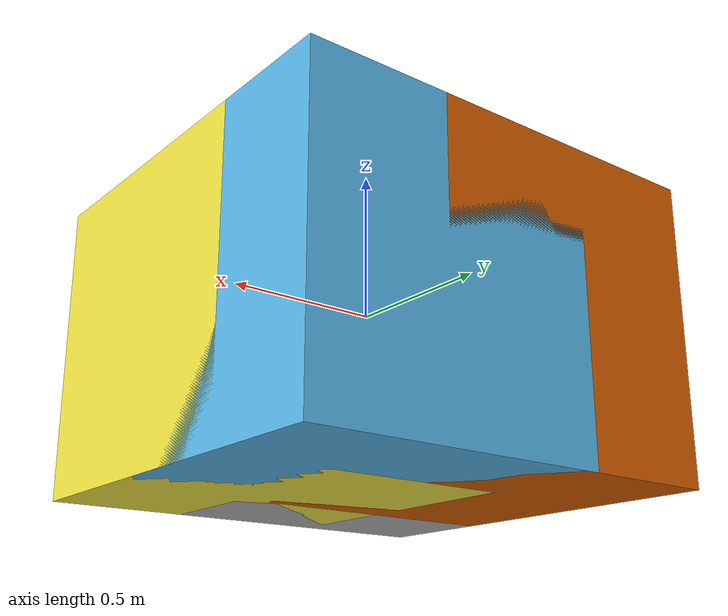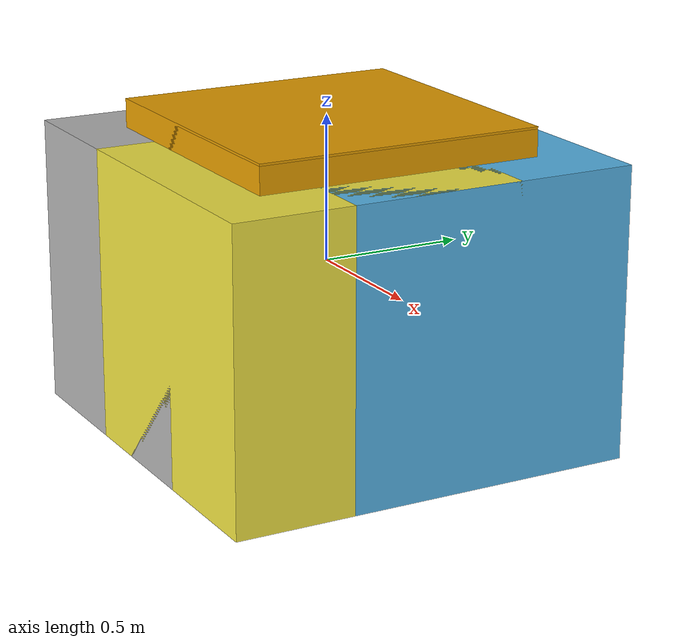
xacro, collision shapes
<?xml version="1.0" ?>
<!-- |    This document was autogenerated by xacro from src/ranger_description/urdf/ranger_mini.xacro | -->
<!-- |    EDITING THIS FILE BY HAND IS NOT RECOMMENDED                                 | -->
<robot name="ranger_description">
  <!-- Base link -->
  <link name="base_link">
    <visual>
      <origin rpy="1.57 0 3.14 " xyz="0 0 0"/>
      <geometry>
        <mesh filename="package://ranger_description/meshes/ranger_base.dae"/>
      </geometry>
    </visual>
    <collision>
      <origin rpy="0 0 0" xyz="0 0 0.008"/>
      <geometry>
        <box size="1 1 1"/>
      </geometry>
    </collision>
    <collision>
      <origin rpy="0 0 0" xyz="0 0 0"/>
      <geometry>
        <box size="1 1 1"/>
      </geometry>
    </collision>
  </link>
  <link name="fl_steering_wheel_link">
    <visual>
      <origin rpy="1.57 0 3.14 " xyz="0 0 0"/>
      <geometry>
        <cylinder length="0.001" radius="0.001"/>
      </geometry>
    </visual>
    <collision>
      <origin rpy="0 0 0" xyz="0 0 0.008"/>
      <geometry>
        <box size="1 1 1"/>
      </geometry>
    </collision>
    <collision>
      <origin rpy="0 0 0" xyz="0 0 0"/>
      <geometry>
        <cylinder length="0.001" radius="0.001"/>
      </geometry>
    </collision>
  </link>
  <joint name="fl_steering_wheel" type="revolute">
    <origin rpy="0 0 0" xyz="0.23 0.206 -0.1"/>
    <parent link="base_link"/>
    <child link="fl_steering_wheel_link"/>
    <axis rpy="0 0 0" xyz="0 0 1"/>
    <limit effort="5" lower="-2.1" upper="2.1" velocity="6.28"/>
  </joint>
  <link name="fl_wheel_link">
    <inertial>
      <mass value="8"/>
      <origin xyz="0 0 0"/>
      <inertia ixx="0.1171" ixy="0" ixz="0" iyy="0.1361" iyz="0" izz="0.1171"/>
    </inertial>
    <visual>
      <origin rpy="1.57 0 0" xyz="0.23 -0.2 0.1"/>
      <geometry>
        <mesh filename="package://ranger_description/meshes/fr.dae"/>
      </geometry>
    </visual>
    <collision>
      <origin rpy="0 0 0" xyz="0 0 0"/>
      <geometry>
        <cylinder length="0.1" radius="0.1"/>
      </geometry>
      <contact>
        <ode>
          <min_depth>0.001</min_depth>
        </ode>
      </contact>
    </collision>
  </link>
  <joint name="fl_wheel" type="continuous">
    <origin rpy="0 0 0" xyz="0.0 0.0 0.0"/>
    <parent link="fl_steering_wheel_link"/>
    <child link="fl_wheel_link"/>
    <axis rpy="0 0 0" xyz="0 0 1"/>
  </joint>
  <link name="fr_steering_wheel_link">
    <visual>
      <origin rpy="1.57 0 3.14 " xyz="0 0 0"/>
      <geometry>
        <cylinder length="0.001" radius="0.001"/>
      </geometry>
    </visual>
    <collision>
      <origin rpy="0 0 0" xyz="0 0 0.008"/>
      <geometry>
        <box size="1 1 1"/>
      </geometry>
    </collision>
    <collision>
      <origin rpy="0 0 0" xyz="0 0 0"/>
      <geometry>
        <cylinder length="0.001" radius="0.001"/>
      </geometry>
    </collision>
  </link>
  <joint name="fr_steering_wheel" type="revolute">
    <origin rpy="0 0 0" xyz="0.23 -0.206 -0.1"/>
    <parent link="base_link"/>
    <child link="fr_steering_wheel_link"/>
    <axis rpy="0 0 0" xyz="0 0 1"/>
    <limit effort="5" lower="-2.1" upper="2.1" velocity="6.28"/>
  </joint>
  <link name="fr_wheel_link">
    <inertial>
      <mass value="8"/>
      <origin xyz="0 0 0"/>
      <inertia ixx="0.1171" ixy="0" ixz="0" iyy="0.1361" iyz="0" izz="0.1171"/>
    </inertial>
    <visual>
      <origin rpy="1.57 0 0" xyz="0.23 0.2 0.1"/>
      <geometry>
        <mesh filename="package://ranger_description/meshes/fl.dae"/>
      </geometry>
    </visual>
    <collision>
      <origin rpy="0 0 0" xyz="0 0 0"/>
      <geometry>
        <cylinder length="0.1" radius="0.1"/>
      </geometry>
      <contact>
        <ode>
          <min_depth>0.001</min_depth>
        </ode>
      </contact>
    </collision>
  </link>
  <joint name="fr_wheel" type="continuous">
    <origin rpy="0 0 0" xyz="0.0 0.0 0.0"/>
    <parent link="fr_steering_wheel_link"/>
    <child link="fr_wheel_link"/>
    <axis rpy="0 0 0" xyz="0 0 1"/>
  </joint>
  <link name="rl_steering_wheel_link">
    <visual>
      <origin rpy="1.57 0 3.14 " xyz="0 0 0"/>
      <geometry>
        <cylinder length="0.001" radius="0.001"/>
      </geometry>
    </visual>
    <collision>
      <origin rpy="0 0 0" xyz="0 0 0.008"/>
      <geometry>
        <box size="1 1 1"/>
      </geometry>
    </collision>
    <collision>
      <origin rpy="0 0 0" xyz="0 0 0"/>
      <geometry>
        <cylinder length="0.001" radius="0.001"/>
      </geometry>
    </collision>
  </link>
  <joint name="rl_steering_wheel" type="revolute">
    <origin rpy="0 0 0" xyz="-0.23 0.206 -0.1"/>
    <parent link="base_link"/>
    <child link="rl_steering_wheel_link"/>
    <axis rpy="0 0 0" xyz="0 0 1"/>
    <limit effort="5" lower="-2.1" upper="2.1" velocity="6.28"/>
  </joint>
  <link name="rl_wheel_link">
    <inertial>
      <mass value="8"/>
      <origin xyz="0 0 0"/>
      <inertia ixx="0.1171" ixy="0" ixz="0" iyy="0.1361" iyz="0" izz="0.1171"/>
    </inertial>
    <visual>
      <origin rpy="1.57 0 0" xyz="0.23 -0.2 0.1"/>
      <geometry>
        <mesh filename="package://ranger_description/meshes/fr.dae"/>
      </geometry>
    </visual>
    <collision>
      <origin rpy="0 0 0" xyz="0 0 0"/>
      <geometry>
        <cylinder length="0.1" radius="0.1"/>
      </geometry>
      <contact>
        <ode>
          <min_depth>0.001</min_depth>
        </ode>
      </contact>
    </collision>
  </link>
  <joint name="rl_wheel" type="continuous">
    <origin rpy="0 0 0" xyz="0.0 0.0 0.0 "/>
    <parent link="rl_steering_wheel_link"/>
    <child link="rl_wheel_link"/>
    <axis rpy="0 0 0" xyz="0 0 1"/>
  </joint>
  <link name="rr_steering_wheel_link">
    <visual>
      <origin rpy="1.57 0 3.14 " xyz="0 0 0"/>
      <geometry>
        <cylinder length="0.001" radius="0.001"/>
      </geometry>
    </visual>
    <collision>
      <origin rpy="0 0 0" xyz="0 0 0.008"/>
      <geometry>
        <box size="1 1 1"/>
      </geometry>
    </collision>
    <collision>
      <origin rpy="0 0 0" xyz="0 0 0"/>
      <geometry>
        <cylinder length="0.001" radius="0.001"/>
      </geometry>
    </collision>
  </link>
  <joint name="rr_steering_wheel" type="revolute">
    <origin rpy="0 0 0" xyz="-0.23 -0.206 -0.1"/>
    <parent link="base_link"/>
    <child link="rr_steering_wheel_link"/>
    <axis rpy="0 0 0" xyz="0 0 1"/>
    <limit effort="5" lower="-2.1" upper="2.1" velocity="6.28"/>
  </joint>
  <link name="rr_wheel_link">
    <inertial>
      <mass value="8"/>
      <origin xyz="0 0 0"/>
      <inertia ixx="0.1171" ixy="0" ixz="0" iyy="0.1361" iyz="0" izz="0.1171"/>
    </inertial>
    <visual>
      <origin rpy="1.57 0 0" xyz="0.23 0.2 0.1"/>
      <geometry>
        <mesh filename="package://ranger_description/meshes/fl.dae"/>
      </geometry>
    </visual>
    <collision>
      <origin rpy="0 0 0" xyz="0 0 0"/>
      <geometry>
        <cylinder length="0.1" radius="0.1"/>
      </geometry>
      <contact>
        <ode>
          <min_depth>0.001</min_depth>
        </ode>
      </contact>
    </collision>
  </link>
  <joint name="rr_wheel" type="continuous">
    <origin rpy="0 0 0" xyz="0.0 0.0 0.0 "/>
    <parent link="rr_steering_wheel_link"/>
    <child link="rr_wheel_link"/>
    <axis rpy="0 0 0" xyz="0 0 1"/>
  </joint>
  <!-- 定义长方体link -->
  <link name="box_link">
    <visual>
      <origin rpy="0 0 0" xyz="0 0 0.15"/>
      <geometry>
        <box size="0.5 0.3 0.25"/>
      </geometry>
      <material name="gray">
        <color rgba="0.7 0.7 0.7 1.0"/>
      </material>
    </visual>
    <collision>
      <origin rpy="0 0 0" xyz="0 0 0.15"/>
      <geometry>
        <box size="0.5 0.3 0.25"/>
      </geometry>
    </collision>
    <inertial>
      <mass value="2.0"/>
      <!-- 假设质量2kg -->
      <origin xyz="0 0 0.15"/>
      <inertia ixx="0.1" ixy="0" ixz="0" iyy="0.1" iyz="0" izz="0.1"/>
    </inertial>
  </link>
  <!-- 将长方体固定到base_link -->
  <joint name="box_joint" type="fixed">
    <origin rpy="0 0 0" xyz="0.03 0 0"/>
    <!-- 放在base_link上方 -->
    <parent link="base_link"/>
    <child link="box_link"/>
  </joint>
  <material name="aluminum">
    <color rgba="0.5 0.5 0.5 1"/>
  </material>
  <material name="plastic">
    <color rgba="0.1 0.1 0.1 1"/>
  </material>
  <!-- camera body, with origin at bottom screw mount -->
  <joint name="camera_joint" type="fixed">
    <origin rpy="0 0 0" xyz="0.25 0 0.15"/>
    <parent link="box_link"/>
    <child link="camera_bottom_screw_frame"/>
  </joint>
  <link name="camera_bottom_screw_frame"/>
  <joint name="camera_link_joint" type="fixed">
    <origin rpy="0 0 0" xyz="0.010600000000000002 0.0175 0.0125"/>
    <parent link="camera_bottom_screw_frame"/>
    <child link="camera_link"/>
  </joint>
  <link name="camera_link">
    <visual>
      <!-- the mesh origin is at front plate in between the two infrared camera axes -->
      <origin rpy="1.5707963267948966 0 1.5707963267948966" xyz="0.0043 -0.0175 0"/>
      <geometry>
        <mesh filename="file:///home/syswonder/zhengwu/robonix/robonix/capability/ranger_description/install/realsense2_description/share/realsense2_description/meshes/d435.dae"/>
      </geometry>
    </visual>
    <collision>
      <origin rpy="0 0 0" xyz="0 -0.0175 0"/>
      <geometry>
        <box size="0.02505 0.09 0.025"/>
      </geometry>
    </collision>
    <inertial>
      <!-- The following are not reliable values, and should not be used for modeling -->
      <mass value="0.072"/>
      <origin xyz="0 0 0"/>
      <inertia ixx="0.003881243" ixy="0.0" ixz="0.0" iyy="0.000498940" iyz="0.0" izz="0.003879257"/>
    </inertial>
  </link>
  <!-- Mid360激光雷达链接 -->
  <link name="livox_frame">
    <visual>
      <geometry>
        <box size="0.08 0.08 0.05"/>
        <!-- 用蓝色盒子表示激光雷达 -->
      </geometry>
      <material name="blue">
        <color rgba="0.0 0.0 1.0 1.0"/>
        <!-- 蓝色 -->
      </material>
    </visual>
    <collision>
      <geometry>
        <box size="0.08 0.08 0.05"/>
      </geometry>
    </collision>
    <inertial>
      <mass value="0.1"/>
      <inertia ixx="0.0001" ixy="0.0" ixz="0.0" iyy="0.0001" iyz="0.0" izz="0.0001"/>
    </inertial>
  </link>
  <!-- 连接箱子和激光雷达的关节 -->
  <joint name="box_to_mid360_joint" type="fixed">
    <parent link="box_link"/>
    <child link="livox_frame"/>
    <origin rpy="0 0 -0.3927" xyz="0.15 0.0 0.275"/>
    <!-- 前上方，22.5度 = 0.3927弧度 -->
  </joint>
  <!-- Pure virtual base_ground link (coordinate frame only) -->
  <link name="base_ground">
    <inertial>
      <mass value="0.000001"/>
      <origin xyz="0 0 0"/>
      <inertia ixx="0.000000001" ixy="0" ixz="0" iyy="0.000000001" iyz="0" izz="0.000000001"/>
    </inertial>
  </link>
  <!-- Fixed joint connecting base_link to base_ground -->
  <joint name="base_ground_joint" type="fixed">
    <origin rpy="0 0 0" xyz="0 0 -0.3"/>
    <parent link="base_link"/>
    <child link="base_ground"/>
  </joint>
</robot>
